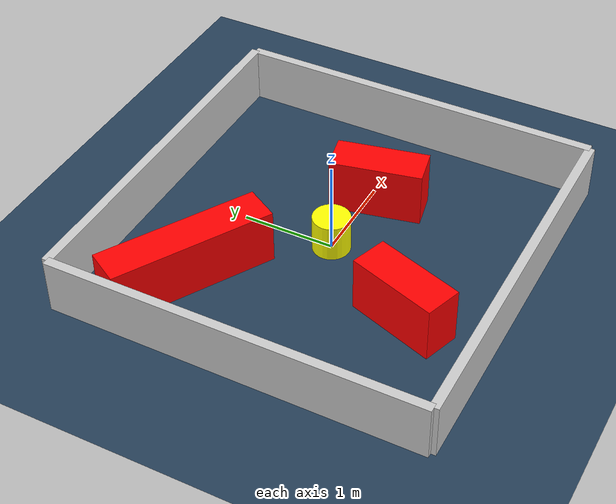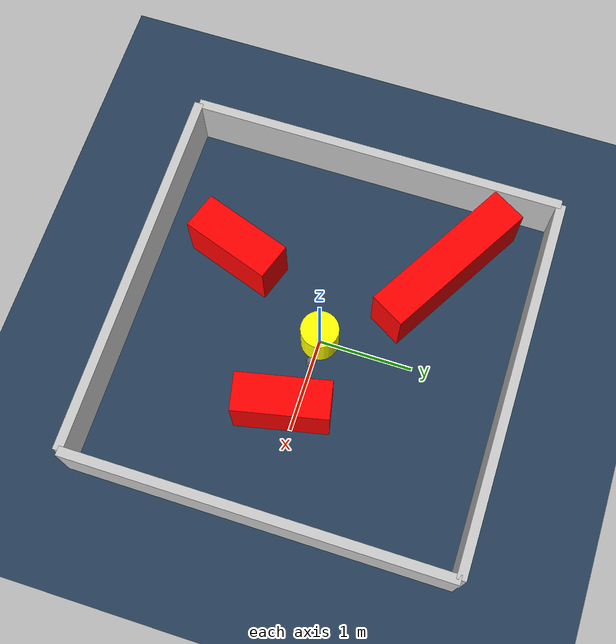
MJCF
<?xml version="1.0" ?>
<mujoco model="generated_environment">
  <option timestep="0.01" integrator="RK4" cone="elliptic"/>
  <default>
    <geom density="1"/>
  </default>
  <asset>
    <texture builtin="gradient" height="3072" rgb1="0.3 0.5 0.7" rgb2="0 0 0" type="skybox" width="512"/>
    <texture builtin="checker" height="300" mark="edge" markrgb="0.8 0.8 0.8" name="groundplane" rgb1="0.2 0.3 0.4" rgb2="0.1 0.2 0.3" type="2d" width="300"/>
    <material name="groundplane" reflectance="0.2" texrepeat="5 5" texture="groundplane" texuniform="true"/>
    <material name="robot" rgba="0.0 1.0 0.0 1"/>
  </asset>
  <worldbody>
    <light dir="0 0 -1" directional="true" pos="0 0 1.5"/>
    <geom condim="4" friction="1.0 0.005 0.001" material="groundplane" name="floor" size="0 0 0.05" type="plane"/>
    <body name="walls">
      <geom name="wall_1" condim="4" pos="-2.0 0.0 0.3" rgba="0.800000011920929 0.800000011920929 0.800000011920929 1.0" size="0.05 2.0 0.3" type="box"/>
      <geom name="wall_2" condim="4" pos="2.0 0.0 0.3" rgba="0.800000011920929 0.800000011920929 0.800000011920929 1.0" size="0.05 2.0 0.3" type="box"/>
      <geom name="wall_3" condim="4" pos="0.0 -2.0 0.3" rgba="0.800000011920929 0.800000011920929 0.800000011920929 1.0" size="2.0 0.05 0.3" type="box"/>
      <geom name="wall_4" condim="4" pos="0.0 2.0 0.3" rgba="0.800000011920929 0.800000011920929 0.800000011920929 1.0" size="2.0 0.05 0.3" type="box"/>
    </body>
    <body name="robot">
      <joint name="joint_x" type="slide" pos="0 0 0" axis="1 0 0"/>
      <joint name="joint_y" type="slide" pos="0 0 0" axis="0 1 0"/>
      <geom name="robot" type="sphere" pos="0.3 0.0 0.2" size="0.05" mass="5." friction="1.0 0.005 0.0001" condim="4" rgba="0.5 0.5 0.5 1.0"/>
      <site name="sensor_ball"/>
    </body>
    <body name="obstacle_movable_1">
      <geom name="obstacle_movable_1" condim="4" pos="0.0 0.0 0.2" euler="0 0 0.0" friction="1.0 0.005 0.001" rgba="1.0 1.0 0.0 1.0" size="0.2 0.2 0.0" type="cylinder" mass="0.1"/>
      <joint type="free"/>
    </body>
    <body name="obstacle_2_static">
      <geom name="obstacle_2_static" condim="4" pos="0.8309596846534453 -0.12820243957539867 0.3" euler="0 0 281.96466297261696" friction="1.0 0.005 0.001" rgba="1 0 0 1" size="0.4915689253169935 0.2 0.3" type="box"/>
    </body>
    <body name="obstacle_3_static">
      <geom name="obstacle_3_static" condim="4" pos="-0.644365382017143 -1.1064481317611374 0.3" euler="0 0 71.07693830778268" friction="1.0 0.005 0.001" rgba="1 0 0 1" size="0.49004628028978925 0.2 0.3" type="box"/>
    </body>
    <body name="obstacle_4_static">
      <geom name="obstacle_4_static" condim="4" pos="-1.0827721103629102 1.041895604711654 0.3" euler="0 0 329.82358130315697" friction="1.0 0.005 0.001" rgba="1 0 0 1" size="0.8757021867388795 0.2 0.3" type="box"/>
    </body>
  </worldbody>
  <actuator>
    <motor name="actuator_x" joint="joint_x" gear="1" ctrlrange="-1 1"/>
    <motor name="actuator_y" joint="joint_y" gear="1" ctrlrange="-1 1"/>
  </actuator>
</mujoco>
